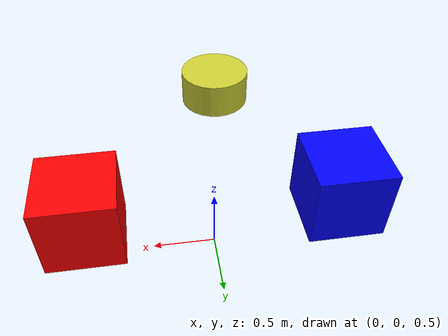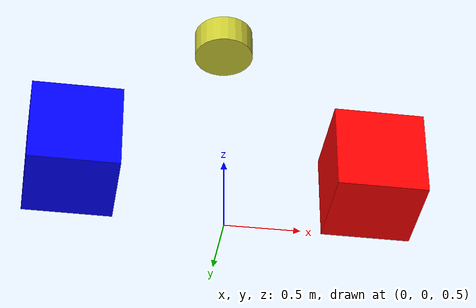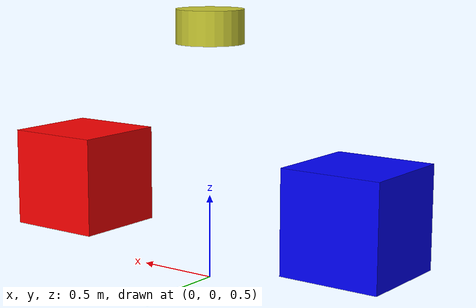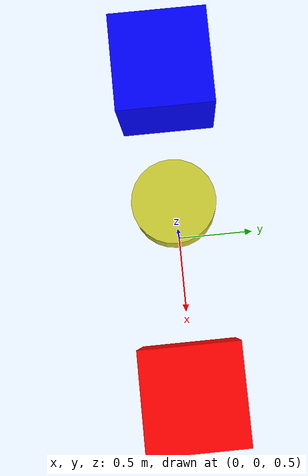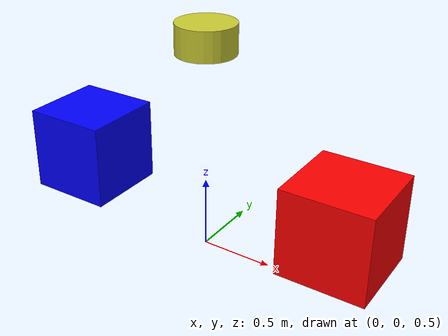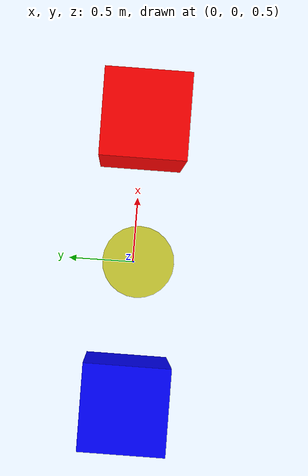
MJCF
<mujoco>
  <option gravity="0 0 -9.81"/>
  <worldbody>
    <!-- Ground -->
    <body name="ground" pos="0 0 -10">
      <geom type="plane" size="30 30 0.1" rgba="0.9 0.9 0.9 1"/>
    </body>
    <!-- Pulley -->
    <body name="pulley" pos="0 0 2">
      <geom type="cylinder" size="0.2 0.1" rgba="0.8 0.8 0.2 1"/>
    </body>
    <!-- Mass 1 -->
    <body name="mass_1" pos="-1 0 1">
      <geom type="box" size="0.3 0.3 0.3" density="1" rgba="0 0 1 1"/>
    </body>
    <!-- Mass 2 -->
    <body name="mass_2" pos="1 0 1">
      <geom type="box" size="0.3 0.3 0.3" density="2.0" rgba="1 0 0 1"/>
    </body>
  </worldbody>
</mujoco>
